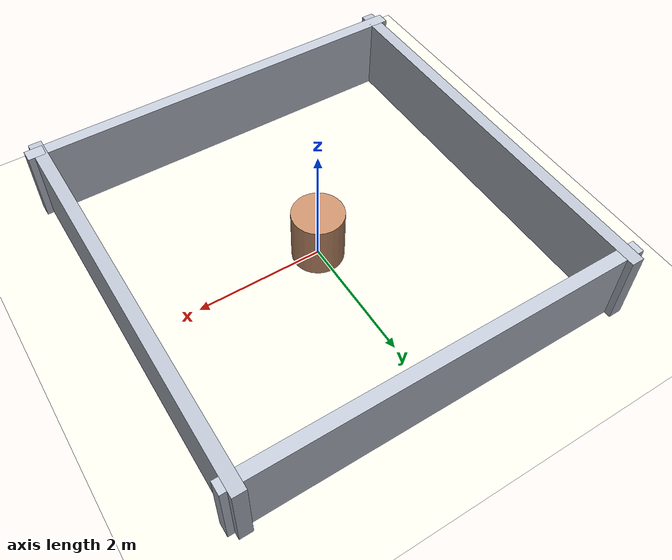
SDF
<!-- 文件: src/sam_bot_nav2_gz/world/world_A.sdf | 负责人: 陆华均 | FR-A | PPT: 第21-22页 场景生成 -->
<!-- 【AI-PROMPT】 场景变体 A：在 empty world 基础上加简单室内布局，供 scenario_runner 多场景对比。... -->
<sdf version="1.8">
  <world name="world_A">
    <gui>
      <camera name="gzclient_camera">
        <pose>0 0 12 0 1.45 0</pose>
      </camera>
    </gui>

    <physics name="1ms" type="ignored">
      <max_step_size>0.001</max_step_size>
      <real_time_factor>1</real_time_factor>
      <real_time_update_rate>1000</real_time_update_rate>
    </physics>

    <plugin name="ignition::gazebo::systems::Physics" filename="ignition-gazebo-physics-system"/>
    <plugin name="ignition::gazebo::systems::UserCommands" filename="ignition-gazebo-user-commands-system"/>
    <plugin name="ignition::gazebo::systems::SceneBroadcaster" filename="ignition-gazebo-scene-broadcaster-system"/>
    <plugin filename="ignition-gazebo-sensors-system" name="ignition::gazebo::systems::Sensors">
      <render_engine>ogre2</render_engine>
    </plugin>

    <scene>
      <ambient>0.92 0.92 0.92 1</ambient>
      <background>0.86 0.89 0.93 1</background>
      <grid>false</grid>
    </scene>

    <light type="directional" name="sun">
      <cast_shadows>true</cast_shadows>
      <pose>0 0 10 0 0 0</pose>
      <diffuse>0.8 0.8 0.8 1</diffuse>
      <specular>0.2 0.2 0.2 1</specular>
      <attenuation>
        <range>1000</range>
        <constant>0.9</constant>
        <linear>0.01</linear>
        <quadratic>0.001</quadratic>
      </attenuation>
      <direction>-0.4 0.2 -0.9</direction>
    </light>

    <model name="ground_plane">
      <static>true</static>
      <link name="link">
        <collision name="collision">
          <geometry>
            <plane>
              <normal>0 0 1</normal>
              <size>40 40</size>
            </plane>
          </geometry>
        </collision>
        <visual name="visual">
          <geometry>
            <plane>
              <normal>0 0 1</normal>
              <size>40 40</size>
            </plane>
          </geometry>
          <material>
            <ambient>0.96 0.94 0.9 1</ambient>
            <diffuse>0.96 0.94 0.9 1</diffuse>
            <specular>1 1 1 0</specular>
          </material>
        </visual>
      </link>
    </model>

    <model name="sky_cam">
      <static>true</static>
      <link name="camera_link">
        <pose>0 0 12 1.57 1.57 0</pose>
        <sensor name="sky_cam" type="camera">
          <camera>
            <horizontal_fov>1.047</horizontal_fov>
            <image>
              <width>1024</width>
              <height>768</height>
            </image>
            <clip>
              <near>0.1</near>
              <far>100</far>
            </clip>
          </camera>
          <always_on>1</always_on>
          <update_rate>1</update_rate>
          <visualize>true</visualize>
          <topic>sky_cam</topic>
        </sensor>
      </link>
    </model>

    <model name="north_wall">
      <static>true</static>
      <pose>0 3.0 0.6 0 0 0</pose>
      <link name="link">
        <collision name="collision">
          <geometry><box><size>6.4 0.2 1.2</size></box></geometry>
        </collision>
        <visual name="visual">
          <geometry><box><size>6.4 0.2 1.2</size></box></geometry>
          <material><ambient>0.75 0.78 0.83 1</ambient></material>
        </visual>
      </link>
    </model>

    <model name="south_wall">
      <static>true</static>
      <pose>0 -3.0 0.6 0 0 0</pose>
      <link name="link">
        <collision name="collision">
          <geometry><box><size>6.4 0.2 1.2</size></box></geometry>
        </collision>
        <visual name="visual">
          <geometry><box><size>6.4 0.2 1.2</size></box></geometry>
          <material><ambient>0.75 0.78 0.83 1</ambient></material>
        </visual>
      </link>
    </model>

    <model name="west_wall">
      <static>true</static>
      <pose>-3.0 0 0.6 0 0 0</pose>
      <link name="link">
        <collision name="collision">
          <geometry><box><size>0.2 6.4 1.2</size></box></geometry>
        </collision>
        <visual name="visual">
          <geometry><box><size>0.2 6.4 1.2</size></box></geometry>
          <material><ambient>0.72 0.75 0.8 1</ambient></material>
        </visual>
      </link>
    </model>

    <model name="east_wall">
      <static>true</static>
      <pose>3.0 0 0.6 0 0 0</pose>
      <link name="link">
        <collision name="collision">
          <geometry><box><size>0.2 6.4 1.2</size></box></geometry>
        </collision>
        <visual name="visual">
          <geometry><box><size>0.2 6.4 1.2</size></box></geometry>
          <material><ambient>0.72 0.75 0.8 1</ambient></material>
        </visual>
      </link>
    </model>

    <model name="main_pillar">
      <static>true</static>
      <pose>0.0 0.0 0.45 0 0 0</pose>
      <link name="link">
        <collision name="collision">
          <geometry>
            <cylinder><radius>0.40</radius><length>0.9</length></cylinder>
          </geometry>
        </collision>
        <visual name="visual">
          <geometry>
            <cylinder><radius>0.40</radius><length>0.9</length></cylinder>
          </geometry>
          <material><ambient>0.78 0.56 0.42 1</ambient></material>
        </visual>
      </link>
    </model>
  </world>
</sdf>
